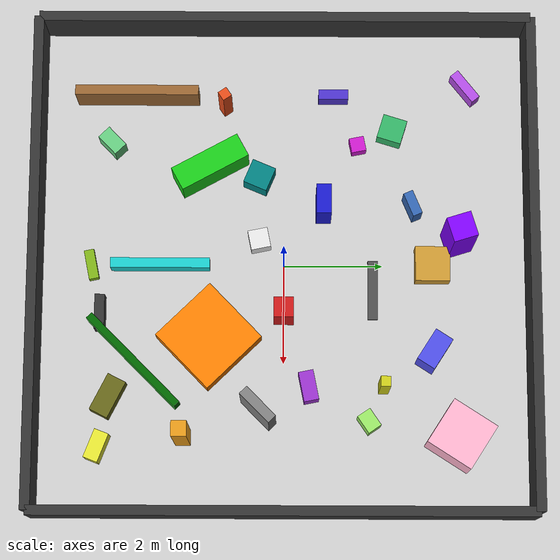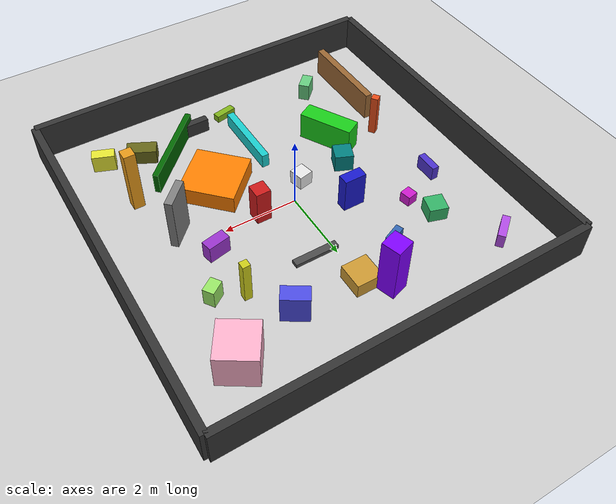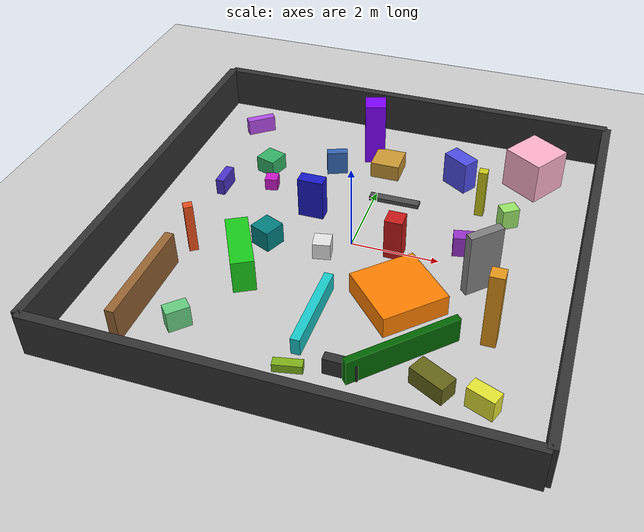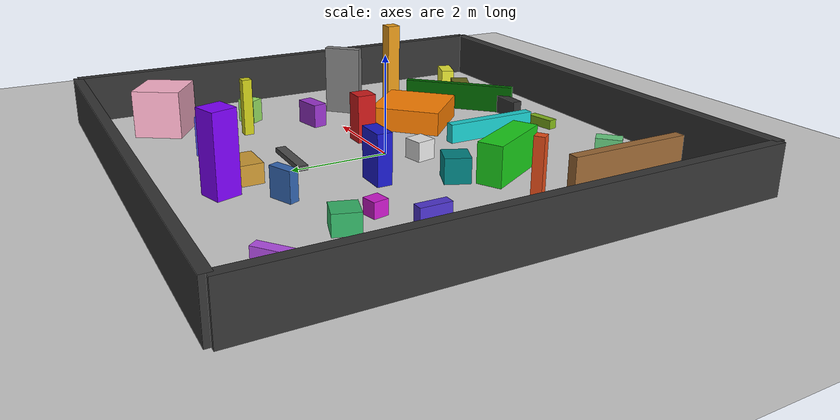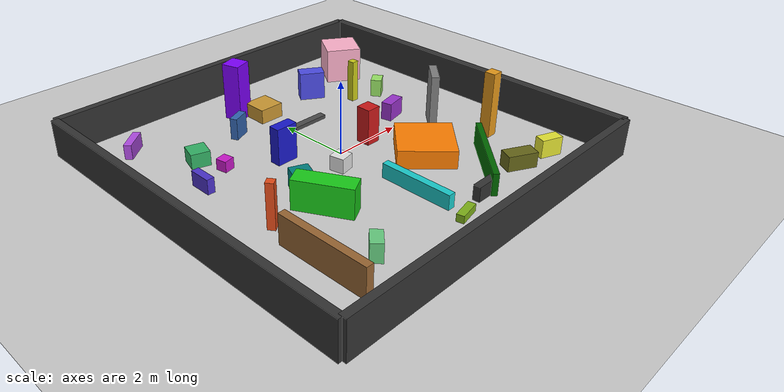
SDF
<?xml version="1.0" ?>
<sdf version="1.7">
  <world name="default">

    <!-- Standard lighting & physics (leave as default) -->
    <include>
      <uri>model://sun</uri>
    </include>

    <!-- Ground plane -->
    <include>
      <uri>model://ground_plane</uri>
    </include>

    <!-- Original Box obstacles -->
    <model name="box1">
      <pose>1 0 0.5 0 0 0</pose>   <!-- x y z roll pitch yaw -->
      <link name="link">
        <collision name="col">
          <geometry><box><size>0.4 0.4 1.0</size></box></geometry>
        </collision>
        <visual name="vis">
          <geometry><box><size>0.4 0.4 1.0</size></box></geometry>
          <material><ambient>0.8 0.1 0.1 1</ambient></material>
        </visual>
      </link>
    </model>

    <model name="box2">
      <pose>-1.2 0.8 0.5 0 0 0</pose>
      <link name="link">
        <collision name="col">
          <geometry><box><size>0.6 0.3 1.0</size></box></geometry>
        </collision>
        <visual name="vis">
          <geometry><box><size>0.6 0.3 1.0</size></box></geometry>
          <material><ambient>0.1 0.1 0.8 1</ambient></material>
        </visual>
      </link>
    </model>

    <!-- Added Box obstacles -->
    <model name="box3">
      <pose>-2 -1.5 0.4 0 0 0.5</pose>
      <link name="link">
        <collision name="col">
          <geometry><box><size>0.5 1.5 0.8</size></box></geometry>
        </collision>
        <visual name="vis">
          <geometry><box><size>0.5 1.5 0.8</size></box></geometry>
          <material><ambient>0.1 0.8 0.1 1</ambient></material> <!-- Green -->
        </visual>
      </link>
    </model>

    <model name="box4_tall_pillar">
      <pose>2.5 2 0.6 0 0 0</pose>
      <link name="link">
        <collision name="col">
          <geometry><box><size>0.2 0.2 1.2</size></box></geometry>
        </collision>
        <visual name="vis">
          <geometry><box><size>0.2 0.2 1.2</size></box></geometry>
          <material><ambient>0.8 0.8 0.1 1</ambient></material> <!-- Yellow -->
        </visual>
      </link>
    </model>

    <model name="box5_long_wall">
      <pose>0 -2.5 0.2 0 0 1.57</pose>
      <link name="link">
        <collision name="col">
          <geometry><box><size>2.0 0.2 0.4</size></box></geometry>
        </collision>
        <visual name="vis">
          <geometry><box><size>2.0 0.2 0.4</size></box></geometry>
          <material><ambient>0.1 0.8 0.8 1</ambient></material> <!-- Cyan -->
        </visual>
      </link>
    </model>

    <model name="box6_small_cube">
      <pose>-2.5 1.5 0.15 0 0 0.2</pose>
      <link name="link">
        <collision name="col">
          <geometry><box><size>0.3 0.3 0.3</size></box></geometry>
        </collision>
        <visual name="vis">
          <geometry><box><size>0.3 0.3 0.3</size></box></geometry>
          <material><ambient>0.8 0.1 0.8 1</ambient></material> <!-- Magenta -->
        </visual>
      </link>
    </model>

    <model name="box7_wide_block">
      <pose>1.5 -1.5 0.25 0 0 -0.8</pose>
      <link name="link">
        <collision name="col">
          <geometry><box><size>1.5 1.5 0.5</size></box></geometry>
        </collision>
        <visual name="vis">
          <geometry><box><size>1.5 1.5 0.5</size></box></geometry>
          <material><ambient>1.0 0.5 0.0 1</ambient></material> <!-- Orange -->
        </visual>
      </link>
    </model>

     <model name="box8">
      <pose>3.0 -0.5 0.75 0 0 0.785</pose>
      <link name="link">
        <collision name="col">
          <geometry><box><size>0.8 0.2 1.5</size></box></geometry>
        </collision>
        <visual name="vis">
          <geometry><box><size>0.8 0.2 1.5</size></box></geometry>
          <material><ambient>0.5 0.5 0.5 1</ambient></material> <!-- Grey -->
        </visual>
      </link>
    </model>

    <model name="box9_diagonal_wall">
      <pose>2.0 -3.0 0.3 0 0 0.785</pose>
      <link name="link">
        <collision name="col"><geometry><box><size>2.5 0.15 0.6</size></box></geometry></collision>
        <visual name="vis">
          <geometry><box><size>2.5 0.15 0.6</size></box></geometry>
          <material><ambient>0.0 0.4 0.0 1</ambient></material> <!-- Dark Green -->
        </visual>
      </link>
    </model>

    <model name="box10_central_block">
      <pose>-0.5 -0.5 0.2 0 0 0.2</pose>
      <link name="link">
        <collision name="col"><geometry><box><size>0.4 0.4 0.4</size></box></geometry></collision>
        <visual name="vis">
          <geometry><box><size>0.4 0.4 0.4</size></box></geometry>
          <material><ambient>0.9 0.9 0.9 1</ambient></material> <!-- White -->
        </visual>
      </link>
    </model>

    <model name="box11_far_pillar">
      <pose>-0.5 3.5 0.8 0 0 0.3</pose>
      <link name="link">
        <collision name="col"><geometry><box><size>0.5 0.5 1.6</size></box></geometry></collision>
        <visual name="vis">
          <geometry><box><size>0.5 0.5 1.6</size></box></geometry>
          <material><ambient>0.5 0.0 1.0 1</ambient></material> <!-- Purple -->
        </visual>
      </link>
    </model>

    <model name="box12_speed_bump">
      <pose>0.5 1.8 0.05 0 0 1.57</pose>
      <link name="link">
        <collision name="col"><geometry><box><size>0.2 1.2 0.1</size></box></geometry></collision>
        <visual name="vis">
          <geometry><box><size>0.2 1.2 0.1</size></box></geometry>
          <material><ambient>0.3 0.3 0.3 1</ambient></material> <!-- Dark Grey -->
        </visual>
      </link>
    </model>

    <model name="box13_far_cube">
      <pose>3.5 3.5 0.5 0 0 1.0</pose>
      <link name="link">
        <collision name="col"><geometry><box><size>1.0 1.0 1.0</size></box></geometry></collision>
        <visual name="vis">
          <geometry><box><size>1.0 1.0 1.0</size></box></geometry>
          <material><ambient>1.0 0.7 0.8 1</ambient></material> <!-- Pink -->
        </visual>
      </link>
    </model>

    <model name="box14_back_wall">
      <pose>-3.5 -3 0.4 0 0 0</pose>
      <link name="link">
        <collision name="col"><geometry><box><size>0.2 2.5 0.8</size></box></geometry></collision>
        <visual name="vis">
          <geometry><box><size>0.2 2.5 0.8</size></box></geometry>
          <material><ambient>0.6 0.4 0.2 1</ambient></material> <!-- Brown -->
        </visual>
      </link>
    </model>

    <model name="box15_corridor_block">
      <pose>-1.8 -0.5 0.25 0 0 -0.4</pose>
      <link name="link">
        <collision name="col"><geometry><box><size>0.5 0.5 0.5</size></box></geometry></collision>
        <visual name="vis">
          <geometry><box><size>0.5 0.5 0.5</size></box></geometry>
          <material><ambient>0.0 0.5 0.5 1</ambient></material> <!-- Teal -->
        </visual>
      </link>
    </model>

    <model name="box16_another_pillar">
      <pose>3.5 -2.0 0.9 0 0 0</pose>
      <link name="link">
        <collision name="col"><geometry><box><size>0.3 0.3 1.8</size></box></geometry></collision>
        <visual name="vis">
          <geometry><box><size>0.3 0.3 1.8</size></box></geometry>
          <material><ambient>0.9 0.6 0.1 1</ambient></material> <!-- Gold -->
        </visual>
      </link>
    </model>

    <model name="box17">
      <pose>2.5 0.5 0.25 0 0 0.2</pose>
      <link name="link">
        <collision name="col"><geometry><box><size>0.6 0.3 0.5</size></box></geometry></collision>
        <visual name="vis">
          <geometry><box><size>0.6 0.3 0.5</size></box></geometry>
          <material><ambient>0.6 0.2 0.8 1</ambient></material>
        </visual>
      </link>
    </model>
    <model name="box18">
      <pose>-2.8 2.2 0.2 0 0 -0.3</pose>
      <link name="link">
        <collision name="col"><geometry><box><size>0.5 0.5 0.4</size></box></geometry></collision>
        <visual name="vis">
          <geometry><box><size>0.5 0.5 0.4</size></box></geometry>
          <material><ambient>0.2 0.7 0.4 1</ambient></material>
        </visual>
      </link>
    </model>
    <model name="box19">
      <pose>1.8 3.0 0.4 0 0 1.0</pose>
      <link name="link">
        <collision name="col"><geometry><box><size>0.4 0.7 0.8</size></box></geometry></collision>
        <visual name="vis">
          <geometry><box><size>0.4 0.7 0.8</size></box></geometry>
          <material><ambient>0.3 0.3 0.9 1</ambient></material>
        </visual>
      </link>
    </model>
    <model name="box20">
      <pose>-3.3 -1.2 0.6 0 0 0.6</pose>
      <link name="link">
        <collision name="col"><geometry><box><size>0.2 0.2 1.2</size></box></geometry></collision>
        <visual name="vis">
          <geometry><box><size>0.2 0.2 1.2</size></box></geometry>
          <material><ambient>0.9 0.3 0.1 1</ambient></material>
        </visual>
      </link>
    </model>
    <model name="box21">
      <pose>0.0 3.0 0.2 0 0 0</pose>
      <link name="link">
        <collision name="col"><geometry><box><size>0.7 0.7 0.4</size></box></geometry></collision>
        <visual name="vis">
          <geometry><box><size>0.7 0.7 0.4</size></box></geometry>
          <material><ambient>0.8 0.6 0.2 1</ambient></material>
        </visual>
      </link>
    </model>
    <model name="box22">
      <pose>2.7 -3.5 0.1 0 0 1.1</pose>
      <link name="link">
        <collision name="col"><geometry><box><size>0.4 0.8 0.6</size></box></geometry></collision>
        <visual name="vis">
          <geometry><box><size>0.4 0.8 0.6</size></box></geometry>
          <material><ambient>0.4 0.4 0.1 1</ambient></material>
        </visual>
      </link>
    </model>
    <model name="box23">
      <pose>-1.2 2.6 0.3 0 0 0.4</pose>
      <link name="link">
        <collision name="col"><geometry><box><size>0.5 0.2 0.6</size></box></geometry></collision>
        <visual name="vis">
          <geometry><box><size>0.5 0.2 0.6</size></box></geometry>
          <material><ambient>0.2 0.4 0.7 1</ambient></material>
        </visual>
      </link>
    </model>
    <model name="box24">
      <pose>-3.5 1.0 0.3 0 0 0.0</pose>
      <link name="link">
        <collision name="col"><geometry><box><size>0.2 0.6 0.4</size></box></geometry></collision>
        <visual name="vis">
          <geometry><box><size>0.2 0.6 0.4</size></box></geometry>
          <material><ambient>0.3 0.2 0.8 1</ambient></material>
        </visual>
      </link>
    </model>
    <model name="box25">
      <pose>3.2 1.7 0.3 0 0 0.6</pose>
      <link name="link">
        <collision name="col"><geometry><box><size>0.4 0.3 0.5</size></box></geometry></collision>
        <visual name="vis">
          <geometry><box><size>0.4 0.3 0.5</size></box></geometry>
          <material><ambient>0.6 0.9 0.4 1</ambient></material>
        </visual>
      </link>
    </model>
    <model name="box26">
      <pose>-2.5 -3.5 0.3 0 0 -0.8</pose>
      <link name="link">
        <collision name="col"><geometry><box><size>0.3 0.5 0.5</size></box></geometry></collision>
        <visual name="vis">
          <geometry><box><size>0.3 0.5 0.5</size></box></geometry>
          <material><ambient>0.4 0.8 0.5 1</ambient></material>
        </visual>
      </link>
    </model>
    <model name="box27">
      <pose>1.0 -3.7 0.2 0 0 0.0</pose>
      <link name="link">
        <collision name="col"><geometry><box><size>0.7 0.2 0.4</size></box></geometry></collision>
        <visual name="vis">
          <geometry><box><size>0.7 0.2 0.4</size></box></geometry>
          <material><ambient>0.2 0.2 0.2 1</ambient></material>
        </visual>
      </link>
    </model>
    <model name="box28">
      <pose>3.7 -3.7 0.25 0 0 1.2</pose>
      <link name="link">
        <collision name="col"><geometry><box><size>0.3 0.6 0.5</size></box></geometry></collision>
        <visual name="vis">
          <geometry><box><size>0.3 0.6 0.5</size></box></geometry>
          <material><ambient>0.9 0.9 0.2 1</ambient></material>
        </visual>
      </link>
    </model>
    <model name="box29">
      <pose>-3.7 3.7 0.25 0 0 -0.9</pose>
      <link name="link">
        <collision name="col"><geometry><box><size>0.2 0.7 0.4</size></box></geometry></collision>
        <visual name="vis">
          <geometry><box><size>0.2 0.7 0.4</size></box></geometry>
          <material><ambient>0.7 0.3 0.9 1</ambient></material>
        </visual>
      </link>
    </model>
    <model name="box30">
      <pose>0.0 -3.9 0.1 0 0 0.2</pose>
      <link name="link">
        <collision name="col"><geometry><box><size>0.6 0.2 0.2</size></box></geometry></collision>
        <visual name="vis">
          <geometry><box><size>0.6 0.2 0.2</size></box></geometry>
          <material><ambient>0.5 0.7 0.1 1</ambient></material>
        </visual>
      </link>
    </model>
<!-- Pared trasera -->
<model name="wall_back">
  <pose>0 -5 0.5 0 0 0</pose>
  <link name="link">
    <collision name="col"><geometry><box><size>10 0.2 1.0</size></box></geometry></collision>
    <visual name="vis">
      <geometry><box><size>10 0.2 1.0</size></box></geometry>
      <material><ambient>0.2 0.2 0.2 1</ambient></material>
    </visual>
  </link>
</model>

<!-- Pared delantera -->
<model name="wall_front">
  <pose>0 5 0.5 0 0 0</pose>
  <link name="link">
    <collision name="col"><geometry><box><size>10 0.2 1.0</size></box></geometry></collision>
    <visual name="vis">
      <geometry><box><size>10 0.2 1.0</size></box></geometry>
      <material><ambient>0.2 0.2 0.2 1</ambient></material>
    </visual>
  </link>
</model>

<!-- Pared izquierda -->
<model name="wall_left">
  <pose>-5 0 0.5 0 0 0</pose>
  <link name="link">
    <collision name="col"><geometry><box><size>0.2 10 1.0</size></box></geometry></collision>
    <visual name="vis">
      <geometry><box><size>0.2 10 1.0</size></box></geometry>
      <material><ambient>0.2 0.2 0.2 1</ambient></material>
    </visual>
  </link>
</model>

<!-- Pared derecha -->
<model name="wall_right">
  <pose>5 0 0.5 0 0 0</pose>
  <link name="link">
    <collision name="col"><geometry><box><size>0.2 10 1.0</size></box></geometry></collision>
    <visual name="vis">
      <geometry><box><size>0.2 10 1.0</size></box></geometry>
      <material><ambient>0.2 0.2 0.2 1</ambient></material>
    </visual>
  </link>
</model>

  </world>
</sdf>
